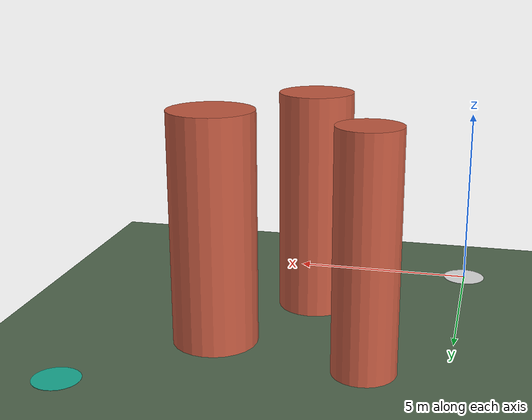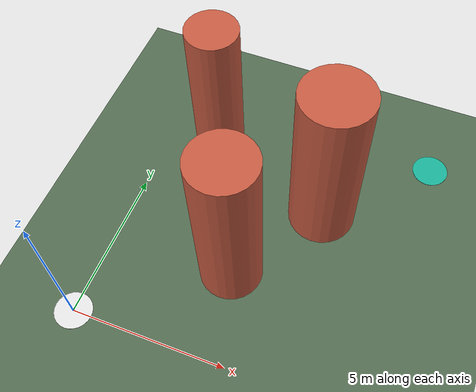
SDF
<sdf version="1.9">
 <world name="inspection">
  <physics name="physics" type="ignored">
   <max_step_size>0.004</max_step_size>
   <real_time_factor>1</real_time_factor>
  </physics>
  <gravity>0 0 -9.81</gravity>
  <magnetic_field>6e-6 2.3e-5 -4.2e-5</magnetic_field>
  <plugin filename="gz-sim-physics-system" name="gz::sim::systems::Physics"/>
  <plugin filename="gz-sim-user-commands-system" name="gz::sim::systems::UserCommands"/>
  <plugin filename="gz-sim-scene-broadcaster-system" name="gz::sim::systems::SceneBroadcaster"/>
  <plugin filename="gz-sim-imu-system" name="gz::sim::systems::Imu"/>
  <plugin filename="gz-sim-magnetometer-system" name="gz::sim::systems::Magnetometer"/>
  <plugin filename="gz-sim-air-pressure-system" name="gz::sim::systems::AirPressure"/>
  <plugin filename="gz-sim-navsat-system" name="gz::sim::systems::NavSat"/>
  <plugin filename="gz-sim-sensors-system" name="gz::sim::systems::Sensors">
   <render_engine>ogre2</render_engine>
  </plugin>
  <spherical_coordinates>
   <surface_model>EARTH_WGS84</surface_model>
   <world_frame_orientation>ENU</world_frame_orientation>
   <latitude_deg>47.397971</latitude_deg>
   <longitude_deg>8.546164</longitude_deg>
   <elevation>0</elevation>
  </spherical_coordinates>
  <scene>
   <ambient>0.55 0.55 0.55 1</ambient>
   <background>0.62 0.76 0.9 1</background>
   <shadows>true</shadows>
   <grid>false</grid>
  </scene>
  <light type="directional" name="sun">
   <pose>0 0 10 0 0 0</pose>
   <diffuse>0.8 0.8 0.8 1</diffuse>
   <direction>-0.5 0.1 -0.9</direction>
  </light>
  <model name="ground">
   <static>true</static>
   <link name="link">
    <collision name="collision">
     <geometry><plane><normal>0 0 1</normal><size>100 100</size></plane></geometry>
    </collision>
    <visual name="visual">
     <geometry><plane><normal>0 0 1</normal><size>100 100</size></plane></geometry>
     <material><ambient>0.25 0.3 0.25 1</ambient><diffuse>0.33 0.42 0.32 1</diffuse></material>
    </visual>
   </link>
  </model>
  <model name="obstacle_1">
   <static>true</static>
   <pose>4 3 3 0 0 0</pose>
   <link name="link">
    <collision name="collision">
     <geometry><cylinder><radius>1</radius><length>6</length></cylinder></geometry>
    </collision>
    <visual name="visual">
     <geometry><cylinder><radius>1</radius><length>6</length></cylinder></geometry>
     <material><ambient>0.7 0.3 0.2 1</ambient><diffuse>0.78 0.36 0.26 1</diffuse></material>
    </visual>
   </link>
  </model>
  <model name="obstacle_2">
   <static>true</static>
   <pose>6 6 3 0 0 0</pose>
   <link name="link">
    <collision name="collision">
     <geometry><cylinder><radius>1.1</radius><length>6</length></cylinder></geometry>
    </collision>
    <visual name="visual">
     <geometry><cylinder><radius>1.1</radius><length>6</length></cylinder></geometry>
     <material><ambient>0.7 0.3 0.2 1</ambient><diffuse>0.78 0.36 0.26 1</diffuse></material>
    </visual>
   </link>
  </model>
  <model name="obstacle_3">
   <static>true</static>
   <pose>2 7 3 0 0 0</pose>
   <link name="link">
    <collision name="collision">
     <geometry><cylinder><radius>0.8</radius><length>6</length></cylinder></geometry>
    </collision>
    <visual name="visual">
     <geometry><cylinder><radius>0.8</radius><length>6</length></cylinder></geometry>
     <material><ambient>0.7 0.3 0.2 1</ambient><diffuse>0.78 0.36 0.26 1</diffuse></material>
    </visual>
   </link>
  </model>
  <model name="launch_pad">
   <static>true</static>
   <pose>0 0 0.005 0 0 0</pose>
   <link name="link">
    <visual name="visual">
     <geometry><cylinder><radius>0.6</radius><length>0.01</length></cylinder></geometry>
     <material><ambient>0.9 0.9 0.9 1</ambient><diffuse>0.9 0.9 0.9 1</diffuse></material>
    </visual>
   </link>
  </model>
  <model name="goal_marker">
   <static>true</static>
   <pose>9 9 0.005 0 0 0</pose>
   <link name="link">
    <visual name="visual">
     <geometry><cylinder><radius>0.6</radius><length>0.01</length></cylinder></geometry>
     <material><ambient>0.1 0.7 0.6 1</ambient><diffuse>0.1 0.7 0.6 1</diffuse></material>
    </visual>
   </link>
  </model>
  <model name="overview_camera">
   <static>true</static>
   <pose>-6 15 9 0 0.494 -0.833</pose>
   <link name="link">
    <sensor name="overview" type="camera">
     <always_on>1</always_on>
     <update_rate>25</update_rate>
     <topic>overview_camera</topic>
     <camera>
      <horizontal_fov>1.2</horizontal_fov>
      <image><width>960</width><height>540</height></image>
      <clip><near>0.1</near><far>120</far></clip>
     </camera>
     <plugin filename="gz-sim-camera-video-recorder-system" name="gz::sim::systems::CameraVideoRecorder">
      <service>/overview/record_video</service>
      <use_sim_time>true</use_sim_time>
      <fps>25</fps>
      <bitrate>600000</bitrate>
     </plugin>
    </sensor>
   </link>
  </model>
 </world>
</sdf>
